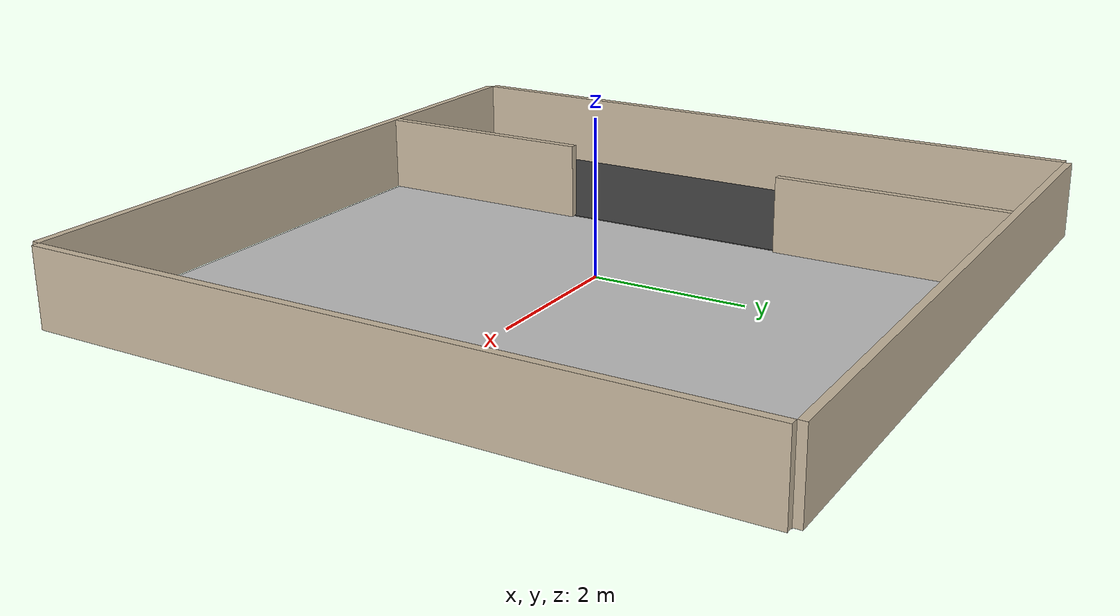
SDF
<sdf version="1.7">
 <world name="CyberWaster_Sim1">
  <plugin filename="libignition-gazebo-physics-system.so" name="ignition::gazebo::systems::Physics"/>
  <plugin filename="libignition-gazebo-scene-broadcaster-system.so" name="ignition::gazebo::systems::SceneBroadcaster"/>
  <light type="directional" name="sun">
   <pose>0 0 10 0 0 0</pose>
   <diffuse>1 1 1 1</diffuse>
   <direction>-0.5 0.1 -0.9</direction>
  </light>
  <model name="ground_floor">
   <static>true</static>
   <link name="link">
    <collision name="collision">
     <geometry><plane><normal>0 0 1</normal><size>9 9</size></plane></geometry>
    </collision>
    <visual name="visual">
     <geometry><plane><normal>0 0 1</normal><size>9 9</size></plane></geometry>
     <material>
      <ambient>0.75 0.75 0.75 1</ambient>
      <diffuse>0.75 0.75 0.75 1</diffuse>
      <specular>0.05 0.05 0.05 1</specular>
     </material>
    </visual>
   </link>
  </model>
  <model name="garage_floor">
   <static>true</static>
   <pose>-3.3 0 0.005 0 0 0</pose>
   <link name="link">
    <collision name="collision"><geometry><box><size>2.6 9.0 0.01</size></box></geometry></collision>
    <visual name="visual">
     <geometry><box><size>2.6 9.0 0.01</size></box></geometry>
     <material>
      <ambient>0.25 0.25 0.25 1</ambient>
      <diffuse>0.25 0.25 0.25 1</diffuse>
      <specular>0.03 0.03 0.03 1</specular>
     </material>
    </visual>
   </link>
  </model>
  <model name="map_walls">
   <static>true</static>
   <link name="east_wall">
    <pose>0 4.55 0.5 0 0 0</pose>
    <collision name="collision"><geometry><box><size>9 0.1 1.0</size></box></geometry></collision>
    <visual name="visual">
     <geometry><box><size>9 0.1 1.0</size></box></geometry>
     <material>
      <ambient>0.78 0.72 0.62 1</ambient>
      <diffuse>0.78 0.72 0.62 1</diffuse>
      <specular>0.05 0.05 0.05 1</specular>
     </material>
    </visual>
   </link>
   <link name="west_wall">
    <pose>0 -4.55 0.5 0 0 0</pose>
    <collision name="collision"><geometry><box><size>9 0.1 1.0</size></box></geometry></collision>
    <visual name="visual">
     <geometry><box><size>9 0.1 1.0</size></box></geometry>
     <material>
      <ambient>0.78 0.72 0.62 1</ambient>
      <diffuse>0.78 0.72 0.62 1</diffuse>
      <specular>0.05 0.05 0.05 1</specular>
     </material>
    </visual>
   </link>
   <link name="north_wall">
    <pose>4.55 0 0.5 0 0 0</pose>
    <collision name="collision"><geometry><box><size>0.1 9 1.0</size></box></geometry></collision>
    <visual name="visual">
     <geometry><box><size>0.1 9 1.0</size></box></geometry>
     <material>
      <ambient>0.78 0.72 0.62 1</ambient>
      <diffuse>0.78 0.72 0.62 1</diffuse>
      <specular>0.05 0.05 0.05 1</specular>
     </material>
    </visual>
   </link>
   <link name="south_wall">
    <pose>-4.55 0 0.5 0 0 0</pose>
    <collision name="collision"><geometry><box><size>0.1 9 1.0</size></box></geometry></collision>
    <visual name="visual">
     <geometry><box><size>0.1 9 1.0</size></box></geometry>
     <material>
      <ambient>0.78 0.72 0.62 1</ambient>
      <diffuse>0.78 0.72 0.62 1</diffuse>
      <specular>0.05 0.05 0.05 1</specular>
     </material>
    </visual>
   </link>
  </model>
  <model name="garage_gate">
   <static>true</static>
   <link name="right_gate">
    <pose>-2.0 -3.0 0.5 0 0 0</pose>
    <collision name="collision"><geometry><box><size>0.1 3.0 1.0</size></box></geometry></collision>
    <visual name="visual">
     <geometry><box><size>0.1 3.0 1.0</size></box></geometry>
     <material>
      <ambient>0.78 0.72 0.62 1</ambient>
      <diffuse>0.78 0.72 0.62 1</diffuse>
      <specular>0.05 0.05 0.05 1</specular>
     </material>
    </visual>
   </link>
   <link name="left_gate">
    <pose>-2.0 3.0 0.5 0 0 0</pose>
    <collision name="collision"><geometry><box><size>0.1 3.0 1.0</size></box></geometry></collision>
    <visual name="visual">
     <geometry><box><size>0.1 3.0 1.0</size></box></geometry>
     <material>
      <ambient>0.78 0.72 0.62 1</ambient>
      <diffuse>0.78 0.72 0.62 1</diffuse>
      <specular>0.05 0.05 0.05 1</specular>
     </material>
    </visual>
   </link>
  </model>
 </world>
</sdf>
